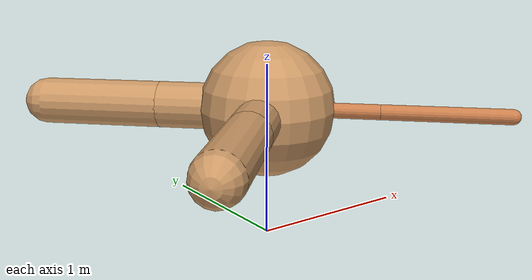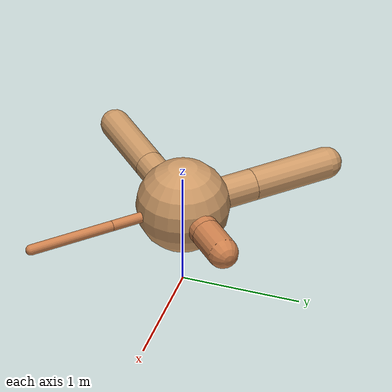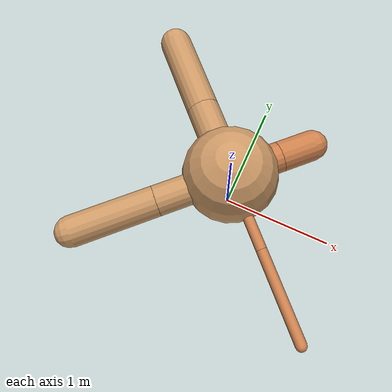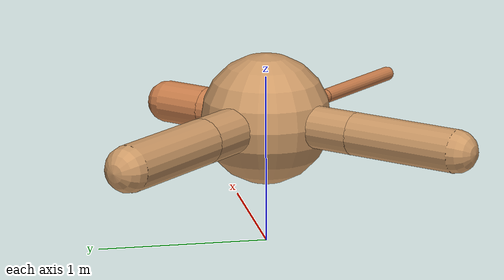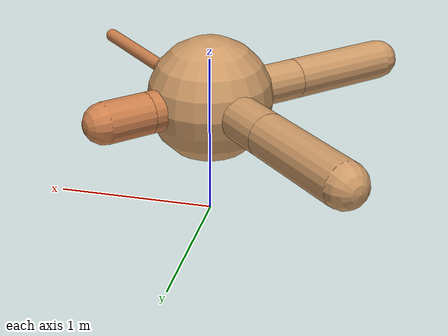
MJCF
<?xml version="1.0" ?>
<mujoco model="ant">

	<compiler angle="degree" coordinate="local" inertiafromgeom="true"/>

	<option integrator="RK4" timestep="0.01"/>

	<custom>

		<numeric data="0.0 0.0 0.55 1.0 0.0 0.0 0.0 0.0 1.0 0.0 -1.0 0.0 -1.0 0.0 1.0" name="init_qpos"/>

	</custom>

	<default>

		<joint armature="1" damping="1" limited="true"/>

		<geom conaffinity="0" condim="3" density="5.0" friction="1.5 0.1 0.1" margin="0.01" rgba="0.8 0.6 0.4 1"/>

	</default>

	<worldbody>

		<body name="torso" pos="0 0 0.75">

			<geom name="torso_geom" pos="0 0 0" size="0.3861021127635176" type="sphere"/>

			<!--joint armature="0" damping="0" limited="false" margin="0.01" name="root" pos="0 0 0" type="free"/-->

			<body name="front_left_leg" pos="0 0 0">

				<geom fromto="0 0 0 0.2 0.2 0" name="aux_1_geom" size="0.12565273186875753" type="capsule" rgba=".8 .5 .3 1"/>

				<body name="aux_1" pos="0.2 0.2 0">

					<joint axis="0 0 1" name="hip_1" pos="0.0 0.0 0.0" range="-40 40" type="hinge"/>

					<geom fromto="0 0 0 0.1009627821265124 0.1009627821265124 0" name="left_leg_geom" size="0.12565273186875753" type="capsule" rgba=".8 .5 .3 1"/>

					<body pos="0.1009627821265124 0.1009627821265124 0" name="front_left_foot">

						<joint axis="-1 1 0" name="ankle_1" pos="0.0 0.0 0.0" range="30 100" type="hinge"/>

						<geom fromto="0 0 0 0.2019255642530248 0.2019255642530248 0" name="left_ankle_geom" size="0.12565273186875753" type="capsule" rgba=".8 .5 .3 1"/>

					</body>

				</body>

			</body>

			<body name="front_right_leg" pos="0 0 0">

				<geom fromto="0 0 0 -0.2 0.2 0" name="aux_2_geom" size="0.13396761909974494" type="capsule"/>

				<body name="aux_2" pos="-0.2 0.2 0">

					<joint axis="0 0 1" name="hip_2" pos="0.0 0.0 0.0" range="-40 40" type="hinge"/>

					<geom fromto="0 0 0 -0.244764528218406 0.244764528218406 0" name="right_leg_geom" size="0.13396761909974494" type="capsule"/>

					<body pos="-0.244764528218406 0.244764528218406 0" name="front_right_foot">

						<joint axis="1 1 0" name="ankle_2" pos="0.0 0.0 0.0" range="-100 -30" type="hinge"/>

						<geom fromto="0 0 0 -0.489529056436812 0.489529056436812 0" name="right_ankle_geom" size="0.13396761909974494" type="capsule"/>

					</body>

				</body>

			</body>

			<body name="left_back_leg" pos="0 0 0">

				<geom fromto="0 0 0 -0.2 -0.2 0" name="aux_3_geom" size="0.12544666363787" type="capsule"/>

				<body name="aux_3" pos="-0.2 -0.2 0">

					<joint axis="0 0 1" name="hip_3" pos="0.0 0.0 0.0" range="-40 40" type="hinge"/>

					<geom fromto="0 0 0 -0.23767727674805875 -0.23767727674805875 0" name="back_leg_geom" size="0.12544666363787" type="capsule"/>

					<body pos="-0.23767727674805875 -0.23767727674805875 0" name="left_back_foot">

						<joint axis="-1 1 0" name="ankle_3" pos="0.0 0.0 0.0" range="-100 -30" type="hinge"/>

						<geom fromto="0 0 0 -0.4753545534961175 -0.4753545534961175 0" name="third_ankle_geom" size="0.12544666363787" type="capsule"/>

					</body>

				</body>

			</body>

			<body name="right_back_leg" pos="0 0 0">

				<geom fromto="0 0 0 0.2 -0.2 0" name="aux_4_geom" size="0.04329945690825154" type="capsule" rgba=".8 .5 .3 1"/>

				<body name="aux_4" pos="0.2 -0.2 0">

					<joint axis="0 0 1" name="hip_4" pos="0.0 0.0 0.0" range="-40 40" type="hinge"/>

					<geom fromto="0 0 0 0.24954032981342783 -0.24954032981342783 0" name="rightback_leg_geom" size="0.04329945690825154" type="capsule" rgba=".8 .5 .3 1"/>

					<body pos="0.24954032981342783 -0.24954032981342783 0" name="right_back_foot">

						<joint axis="1 1 0" name="ankle_4" pos="0.0 0.0 0.0" range="30 100" type="hinge"/>

						<geom fromto="0 0 0 0.49908065962685566 -0.49908065962685566 0" name="fourth_ankle_geom" size="0.04329945690825154" type="capsule" rgba=".8 .5 .3 1"/>

					</body>

				</body>

			</body>

		</body>

	</worldbody>

	<actuator>

		<motor ctrllimited="true" ctrlrange="-1.0 1.0" joint="hip_4" gear="150"/>

		<motor ctrllimited="true" ctrlrange="-1.0 1.0" joint="ankle_4" gear="150"/>

		<motor ctrllimited="true" ctrlrange="-1.0 1.0" joint="hip_1" gear="150"/>

		<motor ctrllimited="true" ctrlrange="-1.0 1.0" joint="ankle_1" gear="150"/>

		<motor ctrllimited="true" ctrlrange="-1.0 1.0" joint="hip_2" gear="150"/>

		<motor ctrllimited="true" ctrlrange="-1.0 1.0" joint="ankle_2" gear="150"/>

		<motor ctrllimited="true" ctrlrange="-1.0 1.0" joint="hip_3" gear="150"/>

		<motor ctrllimited="true" ctrlrange="-1.0 1.0" joint="ankle_3" gear="150"/>

	</actuator>

</mujoco>
